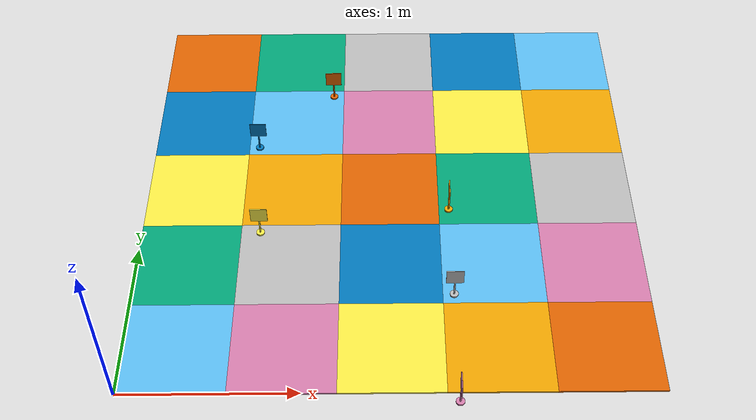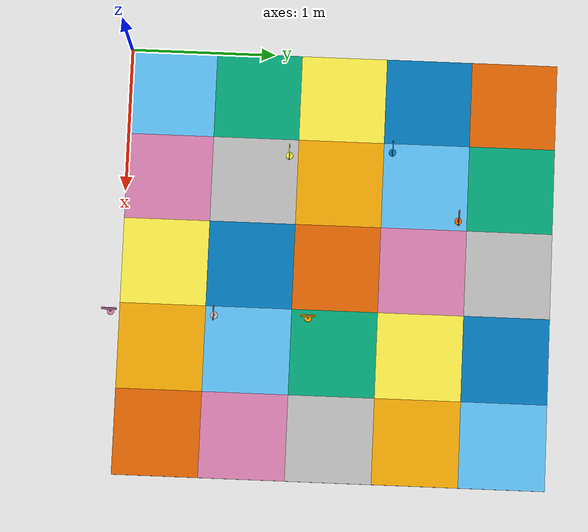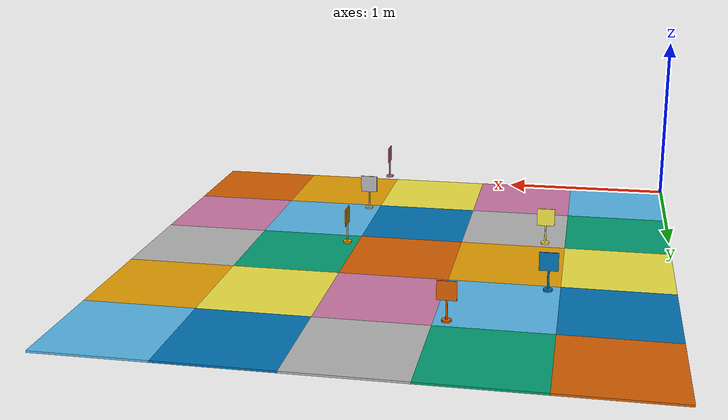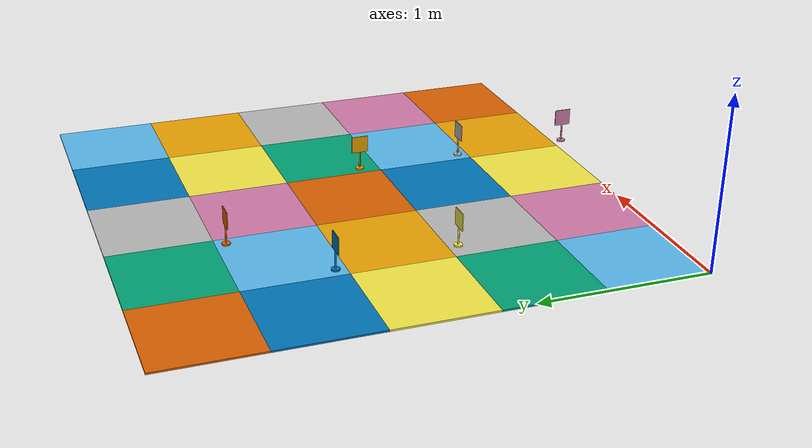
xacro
<?xml version="1.0" ?>
    <!--WARNING: This file was auto-generated by csv2xacro_node.py. It should not be edited by hand.-->
    <robot name="duckietown" xmlns:xacro="http://www.ros.org/wiki/xacro">
        <!--Parameters-->
        <xacro:property name="tile_width" value="0.595"/>
        <xacro:property name="pos_0" value="0.09 0.035"/>
        <xacro:property name="pos_1" value="0.035 0.09"/>
        <xacro:property name="pos_2" value="-0.035 0.09"/>
        <xacro:property name="pos_3" value="-0.09 0.035"/>
        <xacro:property name="pos_4" value="-0.09 -0.035"/>
        <xacro:property name="pos_5" value="-0.035 -0.09"/>
        <xacro:property name="pos_6" value="0.035 -0.09"/>
        <xacro:property name="pos_7" value="0.09 -0.035"/>
        <!--Include the tile and tag macros-->
        <xacro:include filename="$(find duckietown_description)/urdf/macros.urdf.xacro"/>
        <!--The world frame is at the lower left corner of duckietown-->
        <link name="world"/>
        <!--Describe the tiles-->
        <xacro:tile rotation="270" type="turn" x="0" y="0"/>
        <xacro:tile rotation="90" type="straight" x="0" y="1"/>
        <xacro:tile rotation="90" type="straight" x="0" y="2"/>
        <xacro:tile rotation="90" type="straight" x="0" y="3"/>
        <xacro:tile rotation="180" type="turn" x="0" y="4"/>
        <xacro:tile rotation="0" type="straight" x="1" y="0"/>
        <xacro:tile rotation="0" type="empty" x="1" y="1"/>
        <xacro:tile rotation="0" type="empty" x="1" y="2"/>
        <xacro:tile rotation="0" type="empty" x="1" y="3"/>
        <xacro:tile rotation="0" type="straight" x="1" y="4"/>
        <xacro:tile rotation="0" type="straight" x="2" y="0"/>
        <xacro:tile rotation="0" type="empty" x="2" y="1"/>
        <xacro:tile rotation="0" type="empty" x="2" y="2"/>
        <xacro:tile rotation="0" type="empty" x="2" y="3"/>
        <xacro:tile rotation="0" type="straight" x="2" y="4"/>
        <xacro:tile rotation="0" type="straight" x="3" y="0"/>
        <xacro:tile rotation="0" type="empty" x="3" y="1"/>
        <xacro:tile rotation="0" type="empty" x="3" y="2"/>
        <xacro:tile rotation="0" type="empty" x="3" y="3"/>
        <xacro:tile rotation="0" type="straight" x="3" y="4"/>
        <xacro:tile rotation="0" type="turn" x="4" y="0"/>
        <xacro:tile rotation="90" type="straight" x="4" y="1"/>
        <xacro:tile rotation="90" type="straight" x="4" y="2"/>
        <xacro:tile rotation="90" type="straight" x="4" y="3"/>
        <xacro:tile rotation="90" type="turn" x="4" y="4"/>
        <!--Empty border tiles-->
        <xacro:tile visible="false" x="0" y="10"/>
        <xacro:tile visible="false" x="1" y="10"/>
        <xacro:tile visible="false" x="2" y="10"/>
        <xacro:tile visible="false" x="3" y="10"/>
        <xacro:tile visible="false" x="4" y="10"/>
        <xacro:tile visible="false" x="5" y="10"/>
        <xacro:tile visible="false" x="6" y="10"/>
        <xacro:tile visible="false" x="6" y="0"/>
        <xacro:tile visible="false" x="6" y="1"/>
        <xacro:tile visible="false" x="6" y="2"/>
        <xacro:tile visible="false" x="6" y="3"/>
        <xacro:tile visible="false" x="6" y="4"/>
        <xacro:tile visible="false" x="6" y="5"/>
        <xacro:tile visible="false" x="6" y="6"/>
        <xacro:tile visible="false" x="6" y="7"/>
        <xacro:tile visible="false" x="6" y="8"/>
        <xacro:tile visible="false" x="6" y="9"/>
        <!--Describe the tags-->
        <xacro:tag id="28" pos="${pos_7}" rotation="90" x="1" y="2"/>
        <xacro:tag id="58" pos="${pos_0}" rotation="270" x="1" y="3"/>
        <xacro:tag id="51" pos="${pos_4}" rotation="90" x="2" y="4"/>
        <xacro:tag id="30" pos="${pos_7}" rotation="0" x="3" y="0"/>
        <xacro:tag id="49" pos="${pos_0}" rotation="270" x="3" y="1"/>
        <xacro:tag id="100" pos="${pos_1}" rotation="180" x="3" y="2"/>
    </robot>

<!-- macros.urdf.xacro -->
<robot name="macros" xmlns:xacro="http://www.ros.org/wiki/xacro">
    <xacro:property name="pi" value="3.14159265359" />
    <xacro:property name="tile_thickness" value="0.01" />

    <!-- Defines a tile link and joint-->
    <xacro:macro name="tile" params="x y type:=empty rotation:=0 visible:=true">
        <link name="tile_${x}_${y}">
            <xacro:if value="${visible}" >
                <visual>
                    <origin xyz="${tile_width/2} ${tile_width/2} ${-tile_thickness/2}" rpy="0 0 ${rotation * pi/180}"/>
                    <geometry>
                        <mesh filename="package://duckietown_description/urdf/meshes/${type}.dae" />
                    </geometry>
                </visual>
            </xacro:if>
        </link>

        <joint name="world_to_tile_${x}_${y}" type="fixed">
            <parent link="world" />
            <child link="tile_${x}_${y}" />
            <origin xyz="${tile_width * x} ${tile_width * y} 0" />
        </joint>
    </xacro:macro>

    <!-- Defines an april tag link and joint-->
    <xacro:macro name="tag" params="id x y pos rotation">
        <link name="tag_${id}">
            <visual>
                <origin xyz="-0.0254 -0.0254 0" />
                <geometry>
                    <mesh filename="package://duckietown_description/urdf/meshes/tags/tag_${id}.dae" />
                </geometry>
            </visual>
        </link>

        <joint name="world_to_tag_${id}" type="fixed">
            <parent link="tile_${x}_${y}" />
            <child link="tag_${id}" />
            <origin xyz="${pos} 0" rpy="0 0 ${rotation * pi/180}"/>
        </joint>
    </xacro:macro>
</robot>
